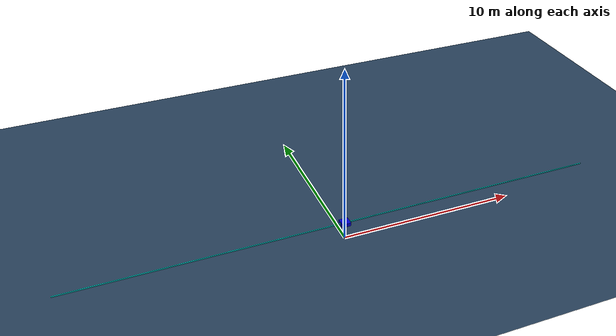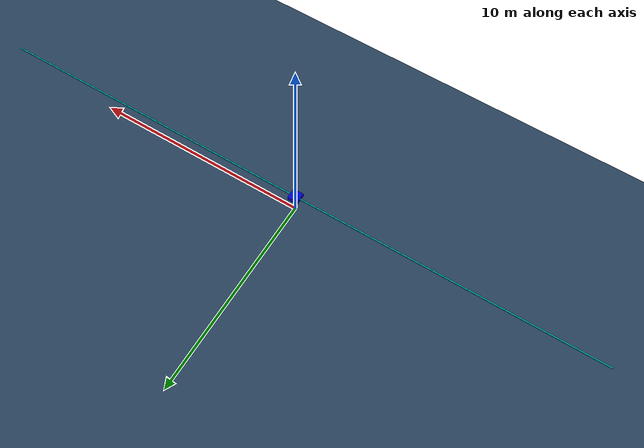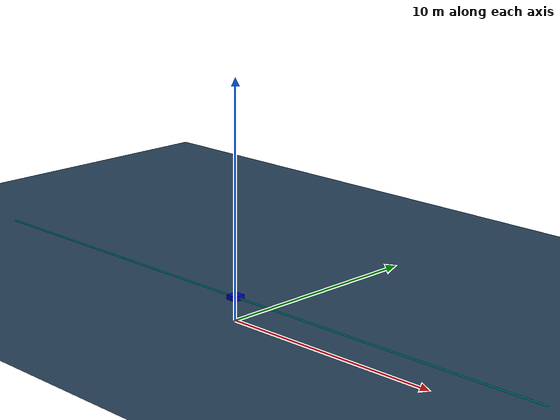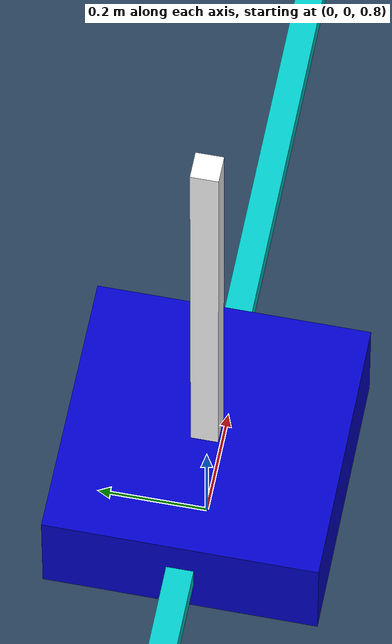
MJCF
<mujoco model="Cartpole Scene">
  <compiler angle="radian" inertiafromgeom="true"/>

  <option timestep="0.02" gravity="0 0 -9.81" integrator="RK4">
  </option>

  <visual>
    <!-- Optional: Set global visual properties like default texture scale -->
    <map znear="0.01" zfar="50"/>
    <quality shadowsize="2048"/>
    <headlight ambient="0.4 0.4 0.4" diffuse="0.8 0.8 0.8" specular="0.1 0.1 0.1"/>
  </visual>

  <asset>
    <!-- Define only assets needed for the main scene (ground) -->
    <texture name="grid" type="2d" builtin="checker" rgb1=".1 .2 .3" rgb2=".2 .3 .4" width="300" height="300" mark="edge" markrgb=".2 .2 .2"/>
    <material name="grid" texture="grid" texrepeat="1 1" texuniform="true" reflectance=".2"/>
    <!-- Removed conflicting material definitions for green, blue, white -->
    <!-- Let the included URDF define its own materials -->
  </asset>

  <worldbody>
    <!-- Camera definition removed - will rely on programmatic setup -->

    <!-- Ground Plane -->
    <geom name="floor" size="0 0 .05" type="plane" material="grid" condim="3"/>

    <!-- Lighting -->
    <light name="top" pos="0 0 2" dir="0 0 -1" diffuse="1 1 1" specular="0.1 0.1 0.1" castshadow="true"/>

    <!-- Body to position the included Cartpole model -->
    <!-- Include the CONVERTED MJCF robot file -->
    <body name="cartpole_base" pos="0 0 0">
      <include file="cartpole_robot.xml"/>
    </body>

  </worldbody>

</mujoco>

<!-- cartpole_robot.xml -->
<!-- MJCF representation of cartpole_robot.xml -->
<!-- Only elements meant for inclusion should remain -->

<worldbody>
    <!-- The URDF 'fixed' joint created a body 'slideBar' relative to world -->
    <!-- Adjusting structure for MJCF inclusion: -->
    <!-- slideBar body becomes the root body included -->
    <body name="slideBar" pos="0 0 1"> <!-- Position based on original fixed joint -->
      <!-- Removed freejoint, as it will be connected via the parent file -->
      <geom name="slideBar" type="box" size="15 0.025 0.025" rgba="0 0.8 0.8 1"/>
      <inertial mass="0.1" pos="0 0 0"/> <!-- Simplified inertial -->
      <body name="cart" pos="0 0 0">
        <inertial mass="5" pos="0 0 0"/>
        <joint name="slider_to_cart" type="slide" axis="1 0 0" limited="true" range="-15 15"/>
        <geom name="cart" type="box" size="0.25 0.25 0.1" rgba="0 0 0.8 1"/>
        <body name="pole" pos="0 0 0">
          <inertial mass="0.8" pos="0 0 0.5"/>
          <joint name="cart_to_pole" type="hinge" axis="0 1 0" pos="0 0 0"/>
          <geom name="pole" type="box" size="0.025 0.025 0.5" pos="0 0 0.5" rgba="1 1 1 1"/>
        </body>
      </body>
    </body>
</worldbody>

<!-- Removed actuator section if present, needs defining in main scene if required -->
